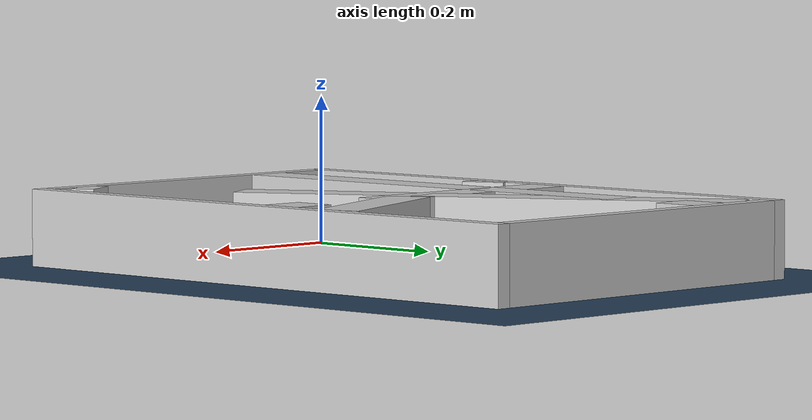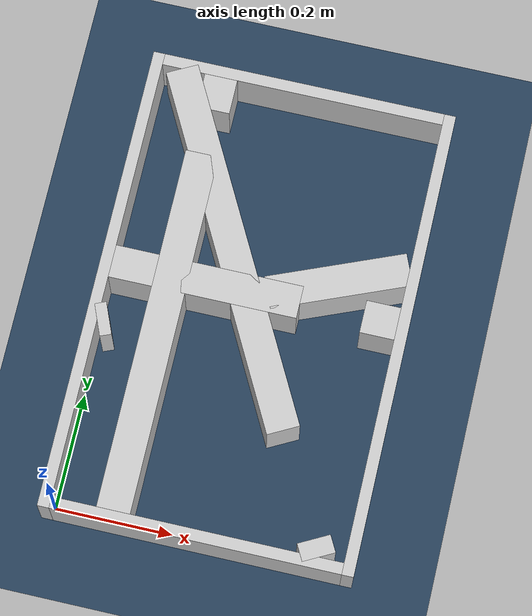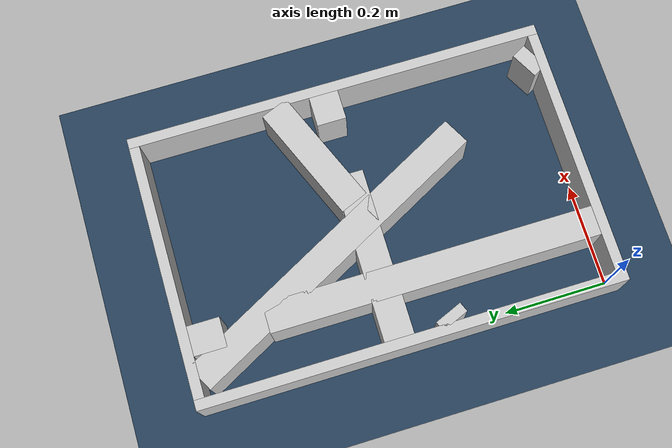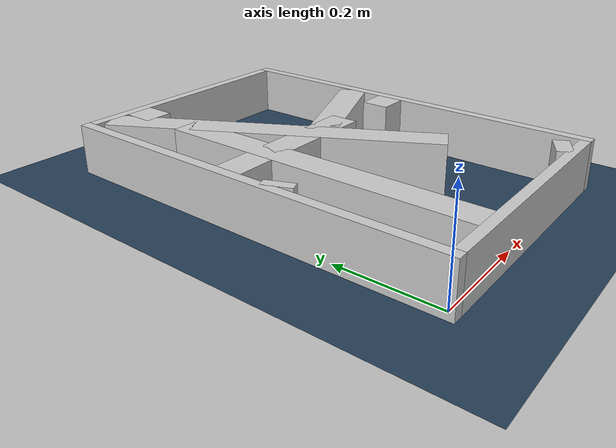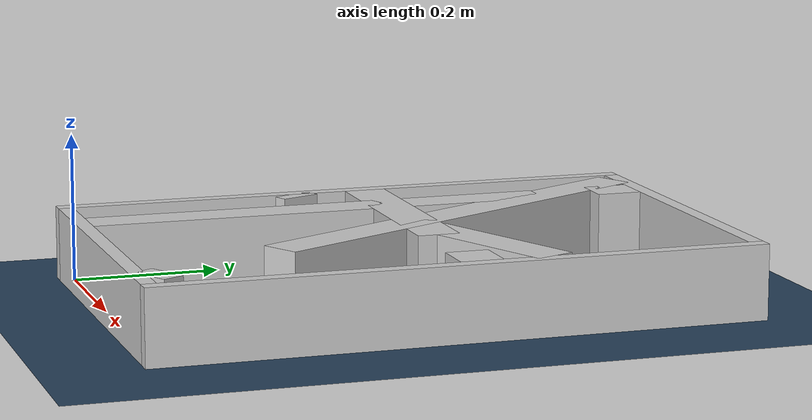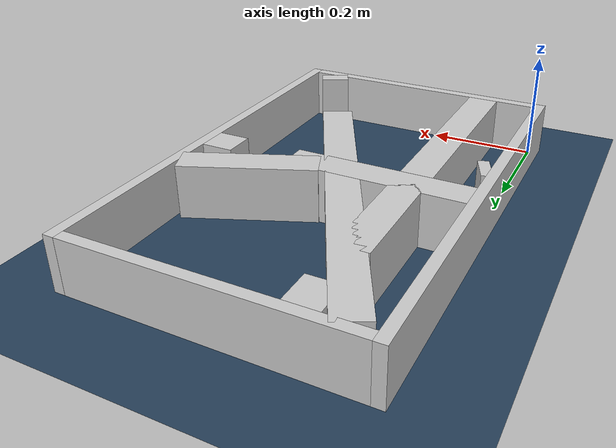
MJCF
<?xml version="1.0" ?>
<mujoco model="generated_real_template">
  <compiler angle="degree"/>
  <option timestep="0.002" integrator="implicitfast" iterations="100" cone="elliptic"/>
  <default>
    <geom density="1"/>
  </default>
  <asset>
    <texture builtin="gradient" height="3072" rgb1="0.3 0.5 0.7" rgb2="0 0 0" type="skybox" width="512"/>
    <texture builtin="checker" height="300" mark="edge" markrgb="0.8 0.8 0.8" name="groundplane" rgb1="0.2 0.3 0.4" rgb2="0.1 0.2 0.3" type="2d" width="300"/>
    <material name="groundplane" reflectance="0.2" texrepeat="5 5" texture="groundplane" texuniform="true"/>
  </asset>
  <worldbody>
    <light dir="0 0 -1" directional="true" pos="0 0 1.5"/>
    <geom name="floor" type="plane" condim="4" friction="0.5 0.005 0.001" material="groundplane" size="0 0 0.05"/>
    <body name="walls">
      <geom name="wall_boundary_left" type="box" condim="4" friction="1.0 0.005 0.0001" rgba="0.8 0.8 0.8 1" pos="-0.010000 0.387500 0.050000" euler="0 0 0.000000" size="0.010000 0.407500 0.050000"/>
      <geom name="wall_boundary_right" type="box" condim="4" friction="1.0 0.005 0.0001" rgba="0.8 0.8 0.8 1" pos="0.500000 0.387500 0.050000" euler="0 0 0.000000" size="0.010000 0.407500 0.050000"/>
      <geom name="wall_boundary_bottom" type="box" condim="4" friction="1.0 0.005 0.0001" rgba="0.8 0.8 0.8 1" pos="0.245000 -0.010000 0.050000" euler="0 0 0.000000" size="0.245000 0.010000 0.050000"/>
      <geom name="wall_boundary_top" type="box" condim="4" friction="1.0 0.005 0.0001" rgba="0.8 0.8 0.8 1" pos="0.245000 0.785000 0.050000" euler="0 0 0.000000" size="0.245000 0.010000 0.050000"/>
      <geom name="wall_inner_1_1" type="box" condim="4" friction="1.0 0.005 0.0001" rgba="0.8 0.8 0.8 1" pos="0.009294 0.311978 0.050000" euler="0 0 22.487485" size="0.010058 0.028500 0.050000"/>
      <geom name="wall_inner_1_2" type="box" condim="4" friction="1.0 0.005 0.0001" rgba="0.8 0.8 0.8 1" pos="0.378029 0.464619 0.050000" euler="0 0 22.487485" size="0.121185 0.028500 0.050000"/>
      <geom name="wall_inner_2_1" type="box" condim="4" friction="1.0 0.005 0.0001" rgba="0.8 0.8 0.8 1" pos="0.440588 0.013675 0.050000" euler="0 0 118.070204" size="0.015498 0.028500 0.050000"/>
      <geom name="wall_inner_2_2" type="box" condim="4" friction="1.0 0.005 0.0001" rgba="0.8 0.8 0.8 1" pos="0.189644 0.484241 0.050000" euler="0 0 118.070204" size="0.329520 0.028500 0.050000"/>
      <geom name="wall_inner_3_1" type="box" condim="4" friction="1.0 0.005 0.0001" rgba="0.8 0.8 0.8 1" pos="0.161571 0.413792 0.050000" euler="0 0 0.000000" size="0.161571 0.028500 0.050000"/>
      <geom name="wall_inner_3_2" type="box" condim="4" friction="1.0 0.005 0.0001" rgba="0.8 0.8 0.8 1" pos="0.460555 0.413792 0.050000" euler="0 0 0.000000" size="0.029445 0.028500 0.050000"/>
      <geom name="wall_inner_4_1" type="box" condim="4" friction="1.0 0.005 0.0001" rgba="0.8 0.8 0.8 1" pos="0.103460 0.316645 0.050000" euler="0 0 90.000000" size="0.316645 0.028500 0.050000"/>
      <geom name="wall_inner_4_2" type="box" condim="4" friction="1.0 0.005 0.0001" rgba="0.8 0.8 0.8 1" pos="0.103460 0.744187 0.050000" euler="0 0 90.000000" size="0.030813 0.028500 0.050000"/>
    </body>
  </worldbody>
</mujoco>
